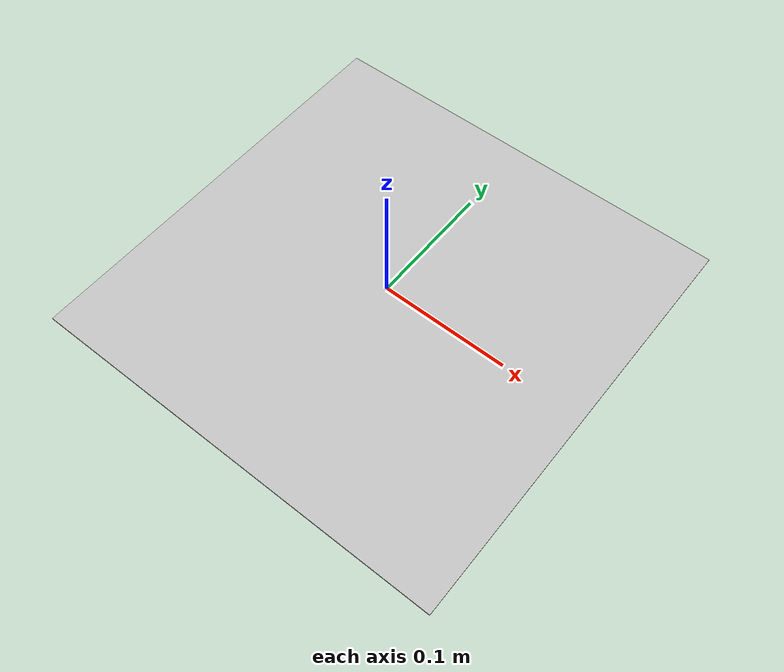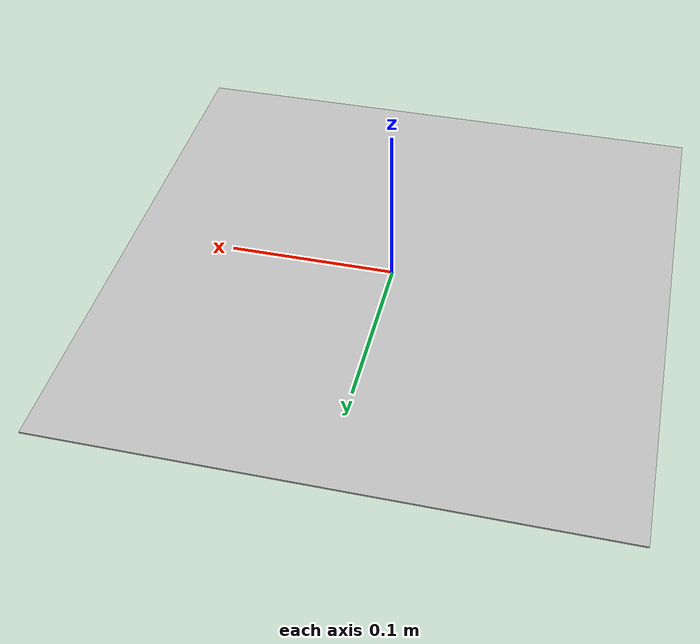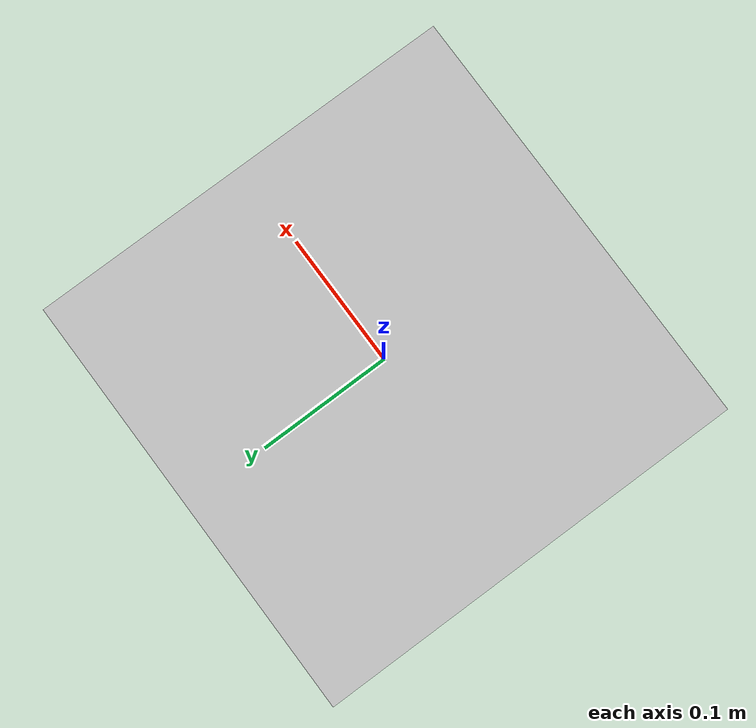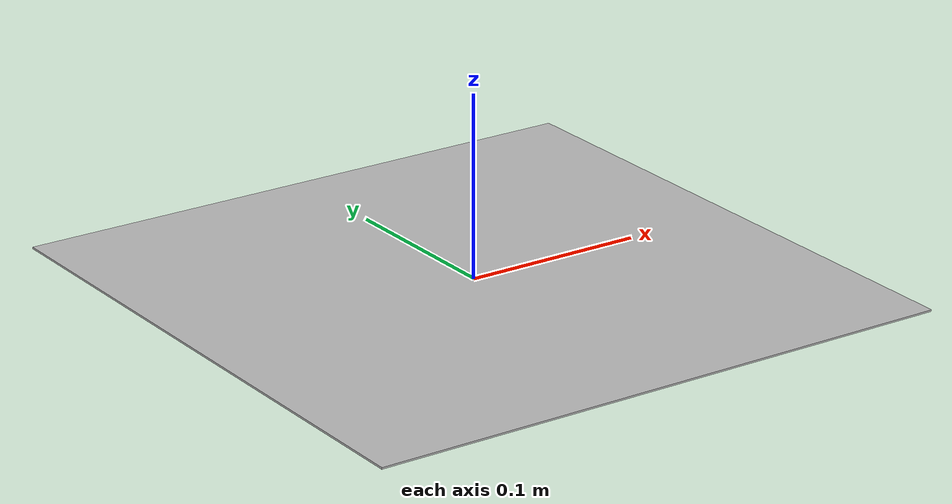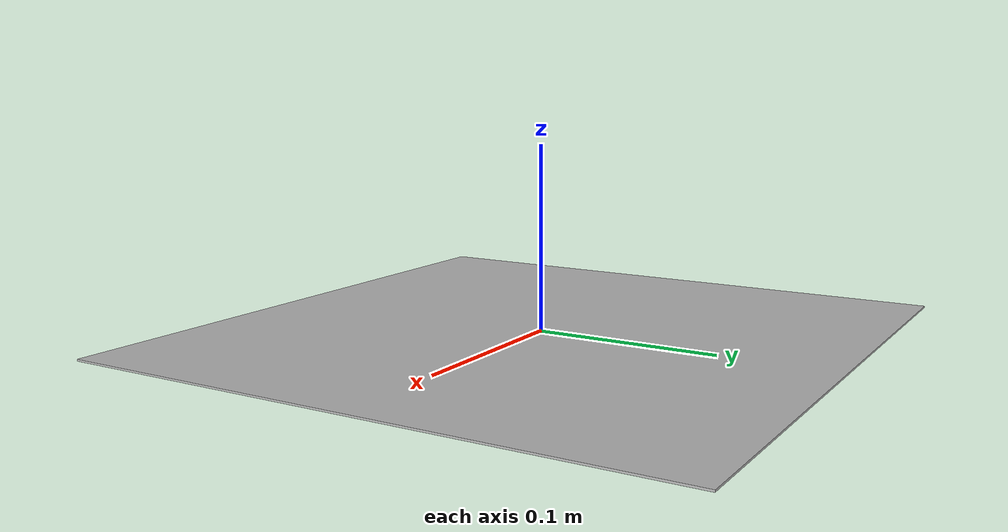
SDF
<?xml version="1.0" ?>
<sdf version="1.5">
  <model name="aruco">
    <static>true</static>
    <link name="link">
        <collision name="collision">
            <geometry>
                <box>
                    <size>0.33 0.33 0.001</size>
                </box>
            </geometry>
        </collision>
        <visual name="visual">
            <cast_shadows>false</cast_shadows>
            <geometry>
                <box>
                    <size>0.33 0.33 0.001</size>
                </box>
            </geometry>
            <material>
                <script>
                    <uri>model://aruco/materials/scripts</uri>
                    <uri>model://aruco/materials/textures</uri>
                    <name>vrc/aruco</name>
                </script>
            </material>
        </visual>
    </link>
  </model>
</sdf>
